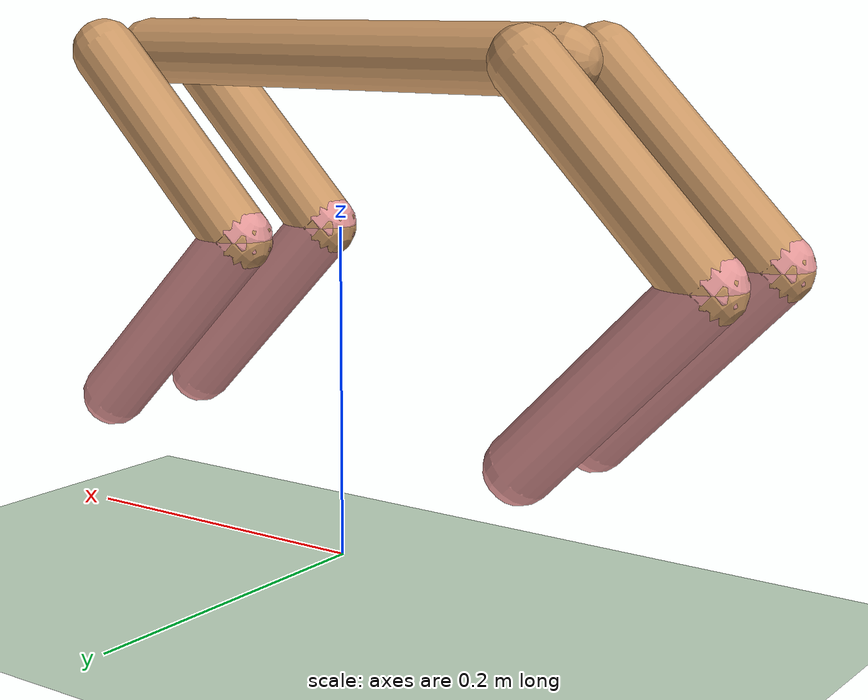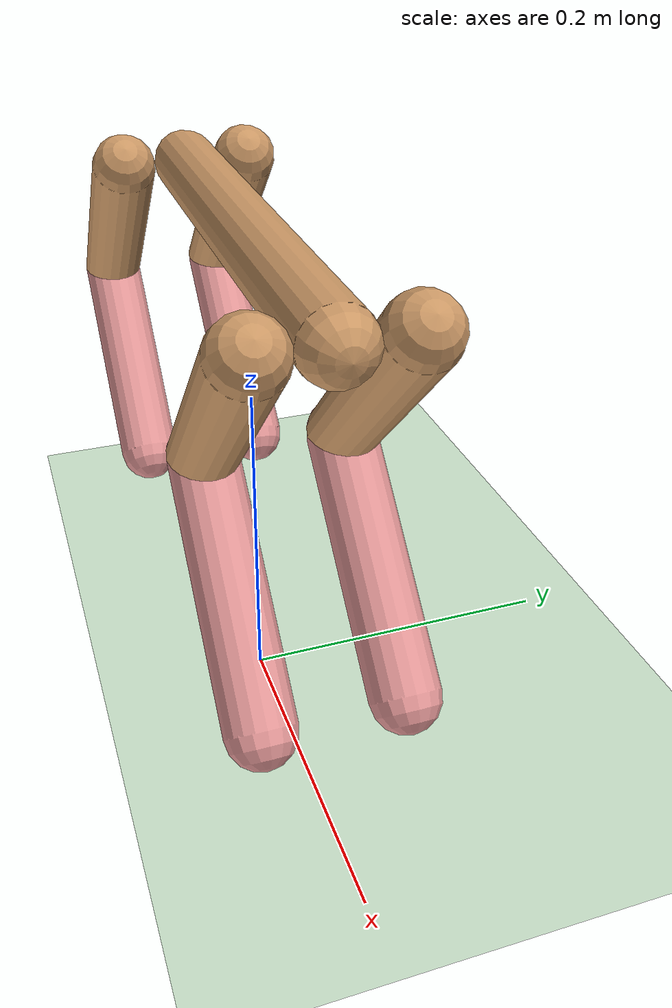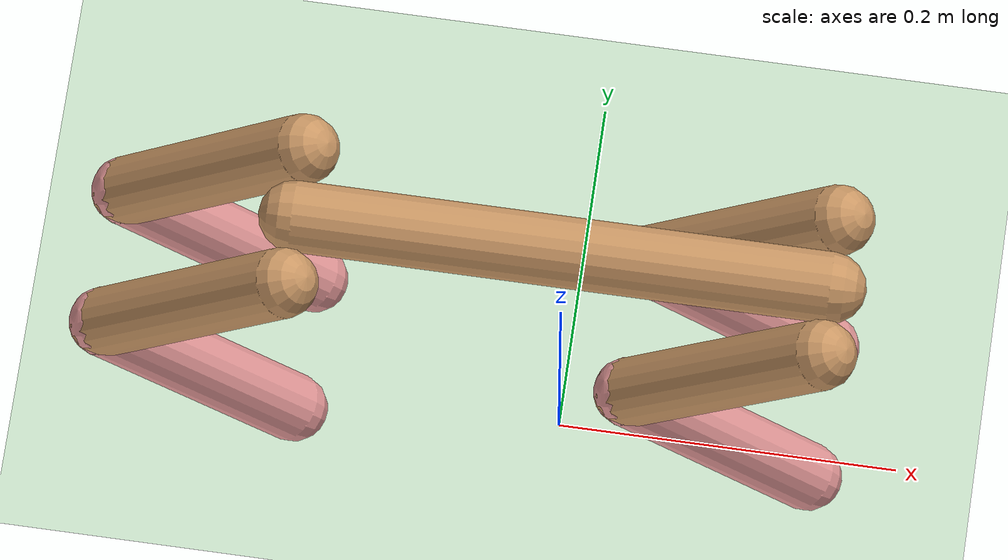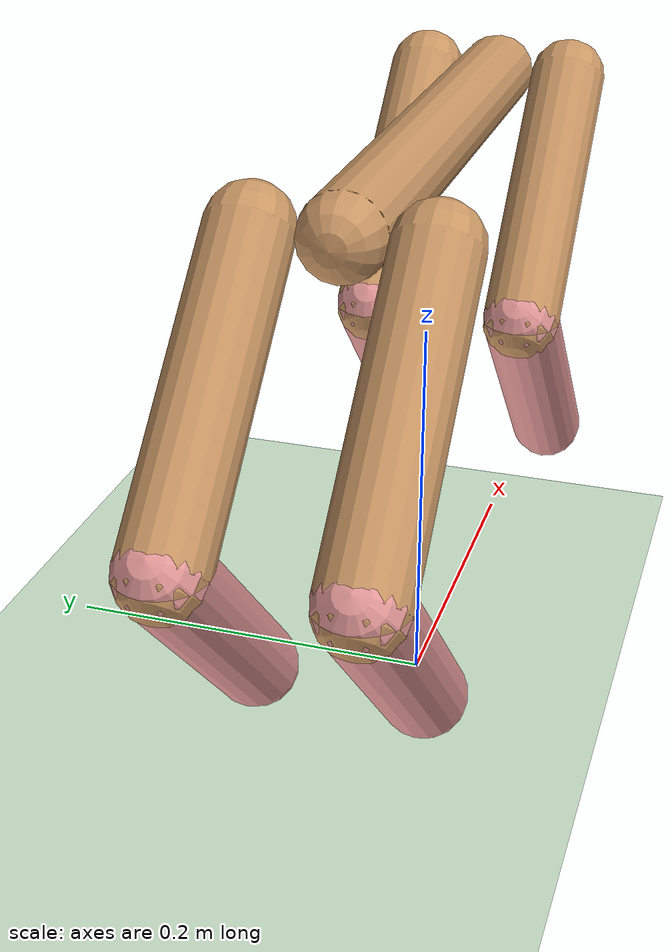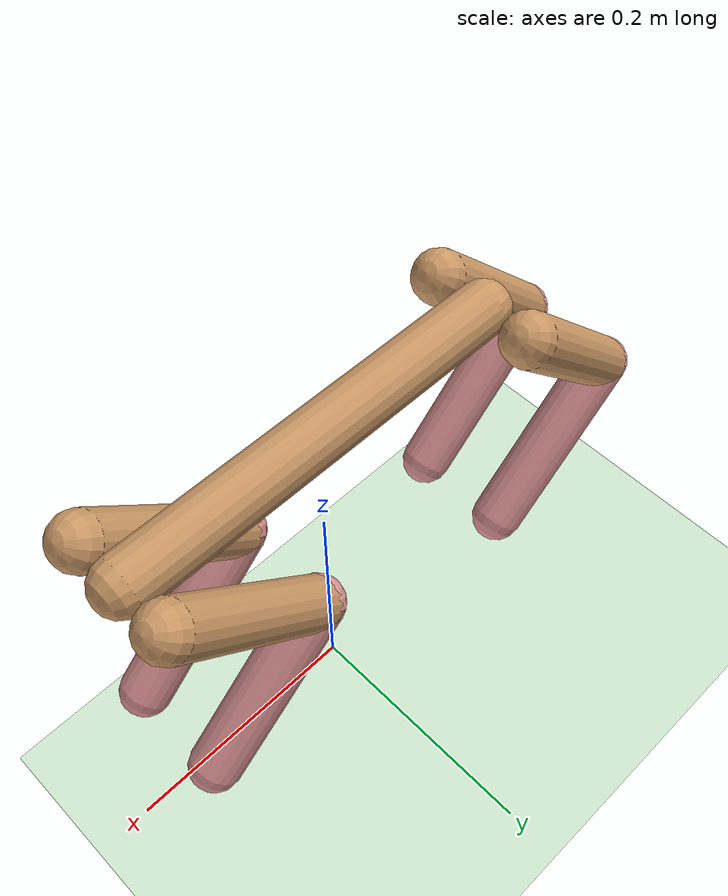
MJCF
<mujoco model="cheetah">
  <compiler angle="radian" coordinate="local" inertiafromgeom="true" settotalmass="4.5"/>
  <default>
    <joint armature=".01" damping="5" limited="true" frictionloss="0.2" stiffness="12"/>
    <geom conaffinity="0" condim="3" contype="1" friction="1.5 .1 .1" rgba="0.8 0.6 .4 1" solimp="0.0 0.8 0.01" solref="0.02 1"/>
    <motor ctrllimited="true" ctrlrange="-1 1"/>
  </default>
  <size nstack="300000" nuser_geom="1"/>
  <option gravity="0 0 -9.81" timestep="0.01"/>
  <asset>
    <texture builtin="gradient" height="100" rgb1="1 1 1" rgb2="0 0 0" type="skybox" width="100"/>
    <texture builtin="flat" height="1278" mark="cross" markrgb="1 1 1" name="texgeom" random="0.01" rgb1="0.8 0.6 0.4" rgb2="0.8 0.6 0.4" type="cube" width="127"/>
    <texture builtin="checker" height="100" name="texplane" rgb1="0 0 0" rgb2="0.8 0.8 0.8" type="2d" width="100"/>
    <material name="MatPlane" reflectance="0.5" shininess="1" specular="1" texrepeat="60 60" texture="texplane"/>
    <material name="geom" texture="texgeom" texuniform="true"/>
  </asset>
  <worldbody>
    <light cutoff="100" diffuse="1 1 1" dir="-0 0 -1.3" directional="true" exponent="1" pos="0 0 1.3" specular=".1 .1 .1"/>
    <geom conaffinity="1" condim="3" material="MatPlane" name="floor" pos="0 0 0" rgba="0.8 0.9 0.8 1" size="40 40 40" type="plane"/>
    <body name="torso" pos="0 0 .3">
      <camera name="track" mode="trackcom" pos="0 -3 0.3" xyaxes="1 0 0 0 0 1"/>
      <joint armature="0" axis="1 0 0" damping="0" limited="false" name="rootx" pos="0 0 0" stiffness="0" type="slide"/>
      <joint armature="0" axis="0 0 1" damping="0" limited="false" name="rootz" pos="0 0 0" stiffness="0" type="slide"/>
      <joint armature="0" axis="0 1 0" damping="0" limited="false" name="rooty" pos="0 0 0" stiffness="0" type="hinge"/>
      <geom fromto="-.15 0 0 .15 0 0" name="torso" size="0.02" type="capsule"/>

      <!-- Left front leg -->
      <body name="lfthigh" pos=".15 0.04 0">
        <joint axis="0 1 0" name="lfthigh" pos="0 0 0" range="-1 .7" type="hinge"/>
        <geom axisangle="0 1 0 .78" name="lfthigh" pos="-.053025 0 -.053025" size="0.02 .075" type="capsule"/>
        <body name="lfshin" pos="-.10605 0 -.10605">
          <joint axis="0 1 0" name="lfshin" pos="0 0 0" range="-1.2 .87" type="hinge"/>
          <geom axisangle="0 1 0 -.78" name="lfshin" pos=".053025 0 -.053025" rgba="0.9 0.6 0.6 1" size="0.02 .075" type="capsule"/>
        </body>
      </body>

      <!-- Right front leg -->
      <body name="rfthigh" pos=".15 -0.04 0">
        <joint axis="0 1 0" name="rfthigh" pos="0 0 0" range="-1 .7" type="hinge"/>
        <geom axisangle="0 1 0 .78" name="rfthigh" pos="-.053025 0 -.053025" size="0.02 .075" type="capsule"/>
        <body name="rfshin" pos="-.10605 0 -.10605">
          <joint axis="0 1 0" name="rfshin" pos="0 0 0" range="-1.2 .87" type="hinge"/>
          <geom axisangle="0 1 0 -.78" name="rfshin" pos=".053025 0 -.053025" rgba="0.9 0.6 0.6 1" size="0.02 .075" type="capsule"/>
        </body>
      </body>

      <body name="lbthigh" pos="-.15 0.04 0">
        <joint axis="0 1 0" name="lbthigh" pos="0 0 0" range="-1 .7" type="hinge"/>
        <geom axisangle="0 1 0 .78" name="lbthigh" pos="-.053025 0 -.053025" size="0.02 .075" type="capsule"/>
        <body name="lbshin" pos="-.10605 0 -.10605">
          <joint axis="0 1 0" name="lbshin" pos="0 0 0" range="-1.2 .87" type="hinge"/>
          <geom axisangle="0 1 0 -.78" name="lbshin" pos=".053025 0 -.053025" rgba="0.9 0.6 0.6 1" size="0.02 .075" type="capsule"/>
        </body>
      </body>

      <body name="rbthigh" pos="-.15 -0.04 0">
        <joint axis="0 1 0" name="rbthigh" pos="0 0 0" range="-1 .7" type="hinge"/>
        <geom axisangle="0 1 0 .78" name="rbthigh" pos="-.053025 0 -.053025" size="0.02 .075" type="capsule"/>
        <body name="rbshin" pos="-.10605 0 -.10605">
          <joint axis="0 1 0" name="rbshin" pos="0 0 0" range="-1.2 .87" type="hinge"/>
          <geom axisangle="0 1 0 -.78" name="rbshin" pos=".053025 0 -.053025" rgba="0.9 0.6 0.6 1" size="0.02 .075" type="capsule"/>
        </body>
      </body>
    </body>
  </worldbody>
  <actuator>
    <motor gear="1" joint="lfthigh" name="lfthigh" ctrlrange="-20 20"/>
    <motor gear="1" joint="lfshin" name="lfshin" ctrlrange="-20 20"/>
    <motor gear="1" joint="rfthigh" name="rfthigh" ctrlrange="-20 20"/>
    <motor gear="1" joint="rfshin" name="rfshin" ctrlrange="-20 20"/>
    <motor gear="1" joint="lbthigh" name="lbthigh" ctrlrange="-20 20"/>
    <motor gear="1" joint="lbshin" name="lbshin" ctrlrange="-20 20"/>
    <motor gear="1" joint="rbthigh" name="rbthigh" ctrlrange="-20 20"/>
    <motor gear="1" joint="rbshin" name="rbshin" ctrlrange="-20 20"/>
  </actuator>
</mujoco>
